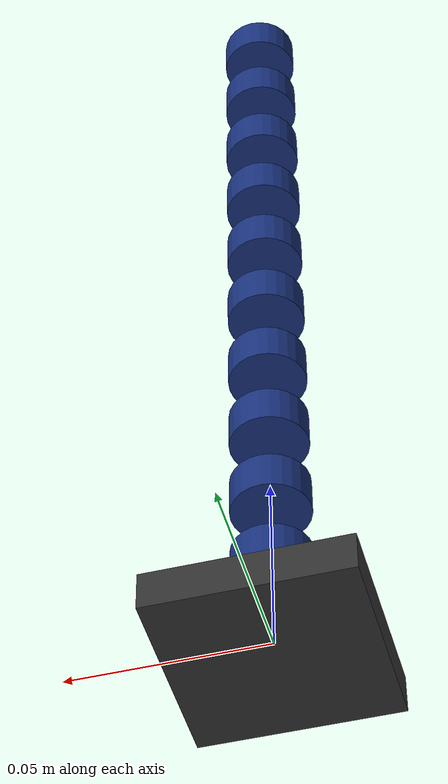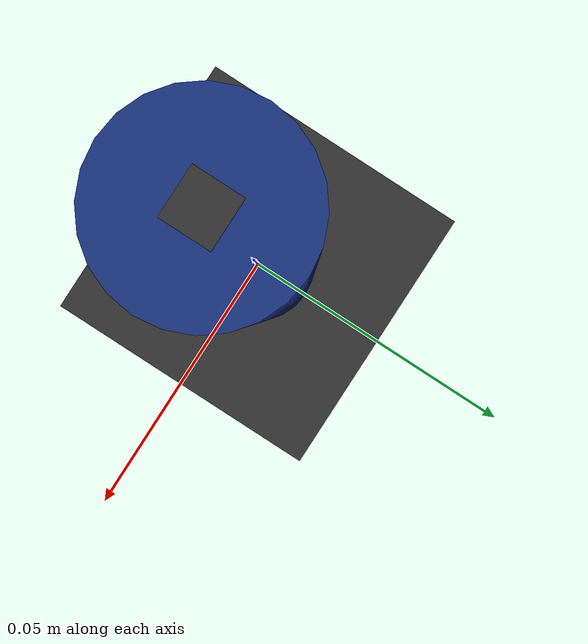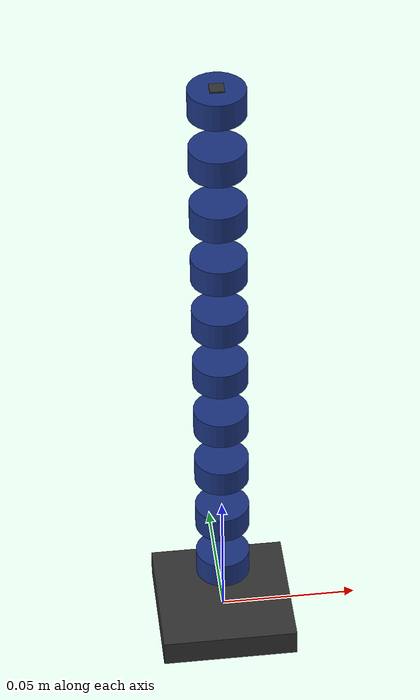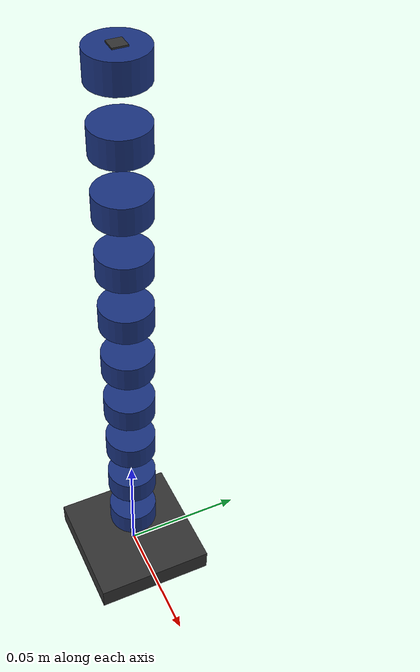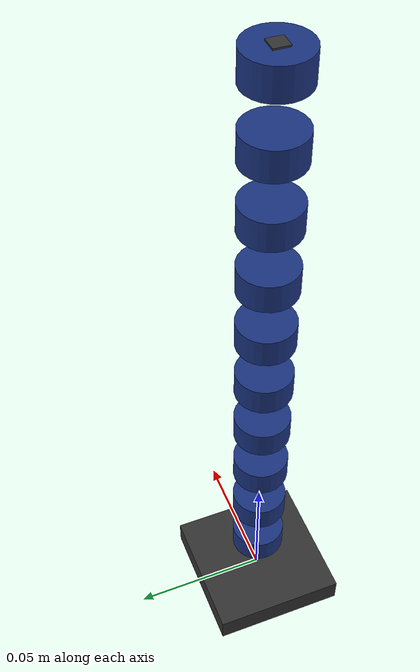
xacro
<?xml version="1.0"?>
<robot xmlns:xacro="http://www.ros.org/wiki/xacro" name="tendon_continuum">

    <material name="dark_grey"><color rgba="0.2 0.2 0.2 1.0"/></material>
    <material name="nitinol_blue"><color rgba="0.1 0.2 0.5 1.0"/></material>
    <material name="black_rod"><color rgba="0.05 0.05 0.05 1.0"/></material>

    <link name="world"/>

    <joint name="world_to_base" type="fixed">
        <parent link="world"/>
        <child link="base_link"/>
        <origin xyz="0 0 0" rpy="0 0 0"/>
    </joint>

    <link name="base_link">
        <visual>
            <geometry><box size="0.05 0.05 0.01"/></geometry>
            <material name="dark_grey"/>
        </visual>
        <collision>
            <geometry><box size="0.05 0.05 0.01"/></geometry>
        </collision>
        <inertial>
            <mass value="0.5"/>
            <inertia ixx="0.001" ixy="0" ixz="0" iyy="0.001" iyz="0" izz="0.001"/>
        </inertial>
    </link>

<xacro:macro name="continuum_segment" params="index parent">

        <joint name="pitch_joint_${index}" type="revolute">
            <parent link="${parent}"/>
            <child link="dummy_pitch_${index}"/>
            <origin xyz="0 0 0.023" rpy="0 0 0"/>
            <axis xyz="0 1 0"/>
            <limit lower="-1.57" upper="1.57" effort="100.0" velocity="10.0"/>
            <dynamics damping="0.005" friction="0.0"/>
        </joint>

        <link name="dummy_pitch_${index}">
            <inertial><mass value="0.001"/><inertia ixx="1e-4" ixy="0" ixz="0" iyy="1e-4" iyz="0" izz="1e-4"/></inertial>
        </link>

        <joint name="yaw_joint_${index}" type="revolute">
            <parent link="dummy_pitch_${index}"/>
            <child link="dummy_yaw_${index}"/>
            <origin xyz="0 0 0" rpy="0 0 0"/>
            <axis xyz="1 0 0"/>
            <limit lower="-1.57" upper="1.57" effort="100.0" velocity="10.0"/>
            <dynamics damping="0.005" friction="0.0"/>
        </joint>

        <link name="dummy_yaw_${index}">
            <inertial><mass value="0.001"/><inertia ixx="1e-4" ixy="0" ixz="0" iyy="1e-4" iyz="0" izz="1e-4"/></inertial>
        </link>

        <joint name="contraction_joint_${index}" type="prismatic">
            <parent link="dummy_yaw_${index}"/>
            <child link="disk_${index}"/>
            <origin xyz="0 0 0" rpy="0 0 0"/>
            <axis xyz="0 0 1"/>
            <limit lower="-0.01" upper="0.002" effort="100.0" velocity="10.0"/>
            <dynamics damping="0.01" friction="0.0"/>
        </joint>

        <link name="disk_${index}">
            <visual>
                <geometry>
                    <cylinder radius="0.01" length="0.01"/>
                </geometry>
                <material name="nitinol_blue"/>
            </visual>
            <collision>
                <geometry>
                    <cylinder radius="0.01" length="0.01"/>
                </geometry>
            </collision>
            <inertial>
                <mass value="0.01"/>
                <inertia ixx="1e-4" ixy="0" ixz="0" iyy="1e-4" iyz="0" izz="1e-4"/>
            </inertial>
        </link>
    </xacro:macro>

    <xacro:continuum_segment index="1" parent="base_link" />
    <xacro:continuum_segment index="2" parent="disk_1" />
    <xacro:continuum_segment index="3" parent="disk_2" />
    <xacro:continuum_segment index="4" parent="disk_3" />
    <xacro:continuum_segment index="5" parent="disk_4" />
    <xacro:continuum_segment index="6" parent="disk_5" />
    <xacro:continuum_segment index="7" parent="disk_6" />
    <xacro:continuum_segment index="8" parent="disk_7" />
    <xacro:continuum_segment index="9" parent="disk_8" />
    <xacro:continuum_segment index="10" parent="disk_9" />

   <xacro:macro name="continuum_control" params="index">
        <joint name="pitch_joint_${index}">
            <command_interface name="position"/>
            <state_interface name="position"/>
        </joint>
        <joint name="yaw_joint_${index}">
            <command_interface name="position"/>
            <state_interface name="position"/>
            <param name="p">100.0</param>
            <param name="d">5.0</param>
        </joint>
        <joint name="contraction_joint_${index}">
            <command_interface name="position"/>
            <state_interface name="position"/>
            <param name="p">1000.0</param>
            <param name="d">10.0</param>
        </joint>
    </xacro:macro>

    <joint name="camera_joint" type="fixed">
        <parent link="disk_10"/>
        <child link="camera_link"/>
        <origin xyz="0 0 0.003" rpy="0 -1.5708 0"/>
    </joint>

    <link name="camera_link">
        <visual>
            <geometry><box size="0.005 0.005 0.005"/></geometry>
            <material name="dark_grey"/>
        </visual>
        <inertial>
            <mass value="0.001"/>
            <inertia ixx="1e-6" ixy="0" ixz="0" iyy="1e-6" iyz="0" izz="1e-6"/>
        </inertial>

    </link>

    <gazebo reference="camera_link">

        <light name="endoscope_light" type="spot">
            <pose>0 0 0 0 -1.5708 0</pose>
            <diffuse>1.0 1.0 1.0 1.0</diffuse>
            <specular>0.5 0.5 0.5 1.0</specular>
            <attenuation>
                <range>1.5</range>
                <constant>0.1</constant>
                <linear>0.01</linear>
                <quadratic>0.001</quadratic>
            </attenuation>
            <spot>
                <inner_angle>0.2</inner_angle>
                <outer_angle>1.6</outer_angle>
                <falloff>1.0</falloff>
            </spot>
        </light>

        <sensor type="camera" name="tip_camera">
            <always_on>true</always_on>
            <update_rate>30.0</update_rate>
            <topic>/camera/image_raw</topic>
            <camera>
                <horizontal_fov>1.047</horizontal_fov>
                <image>
                    <width>400</width>
                    <height>300</height>
                    <format>R8G8B8</format>
                </image>
                <clip>
                    <near>0.001</near>
                    <far>5.0</far>
                </clip>
            </camera>
        </sensor>
    </gazebo>

    <ros2_control name="GazeboSimSystem" type="system">
        <hardware>
            <plugin>gz_ros2_control/GazeboSimSystem</plugin>
        </hardware>
        <xacro:continuum_control index="1" />
        <xacro:continuum_control index="2" />
        <xacro:continuum_control index="3" />
        <xacro:continuum_control index="4" />
        <xacro:continuum_control index="5" />
        <xacro:continuum_control index="6" />
        <xacro:continuum_control index="7" />
        <xacro:continuum_control index="8" />
        <xacro:continuum_control index="9" />
        <xacro:continuum_control index="10" />

    </ros2_control>

    <gazebo>
        <plugin filename="gz_ros2_control-system" name="gz_ros2_control::GazeboSimROS2ControlPlugin">
            <parameters>$(find tendon_continuum)/config/controllers.yaml</parameters>
        </plugin>

        <plugin filename="gz-sim-sensors-system" name="gz::sim::systems::Sensors">
            <render_engine>ogre2</render_engine>
        </plugin>
    </gazebo>

</robot>
